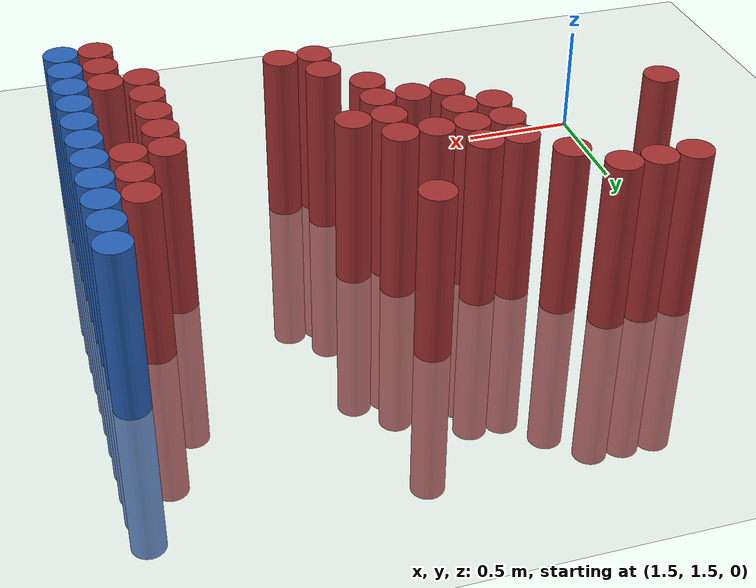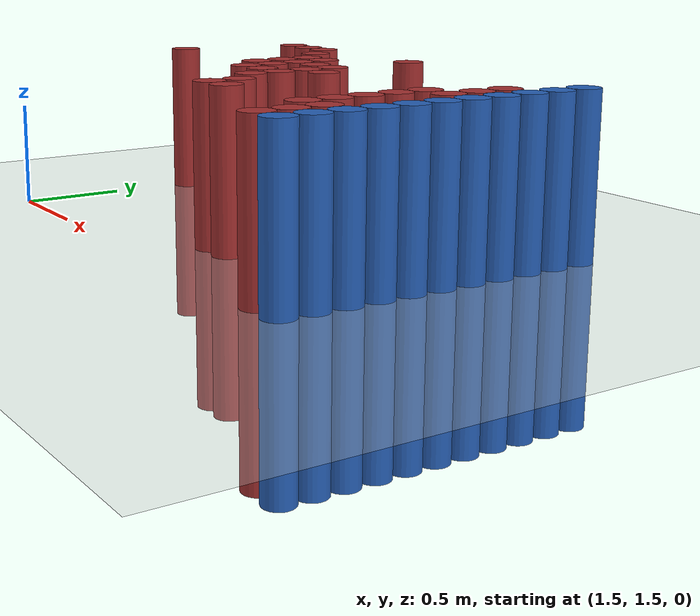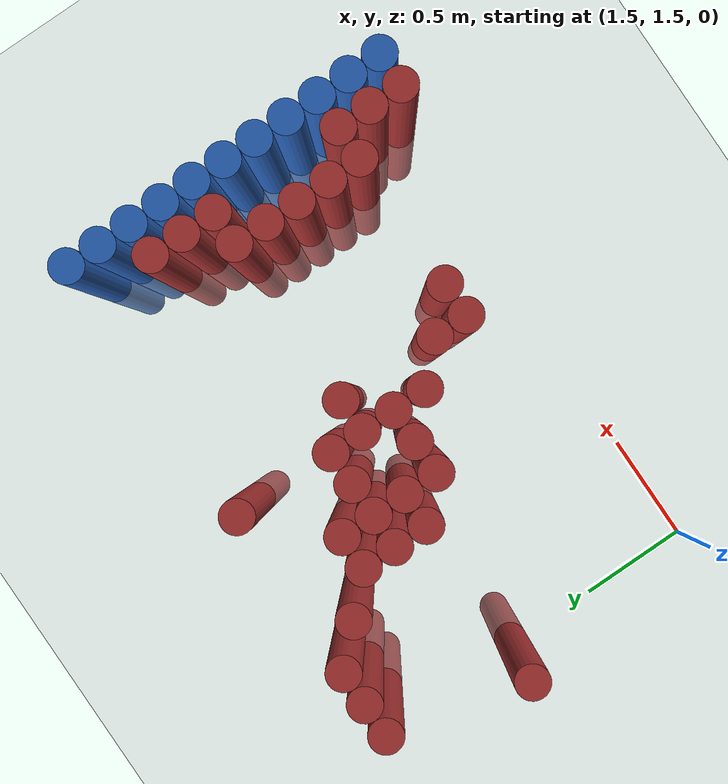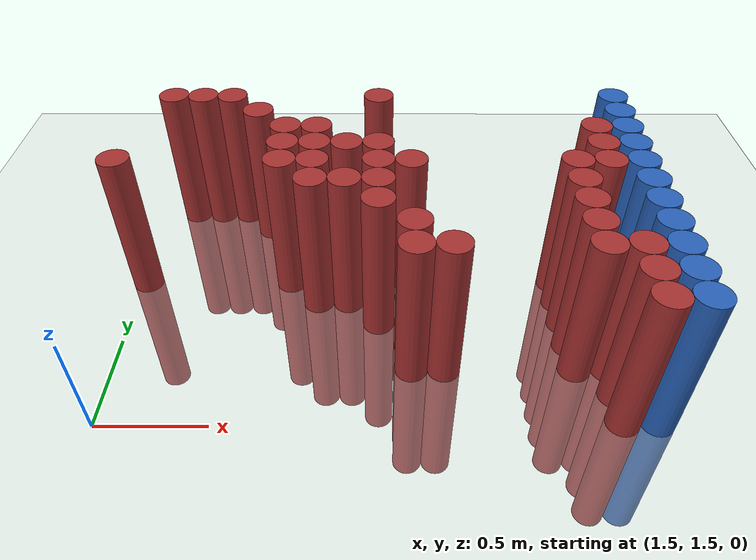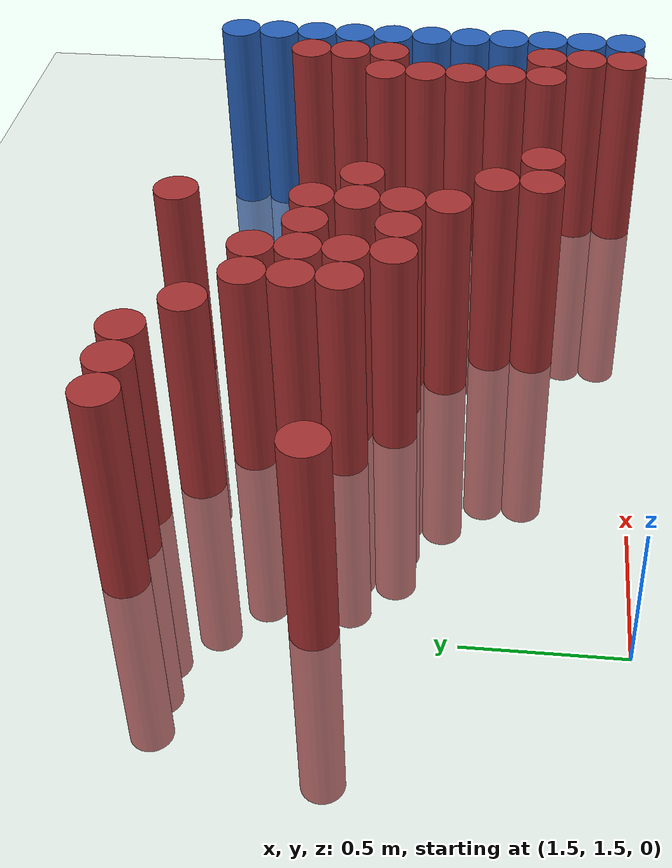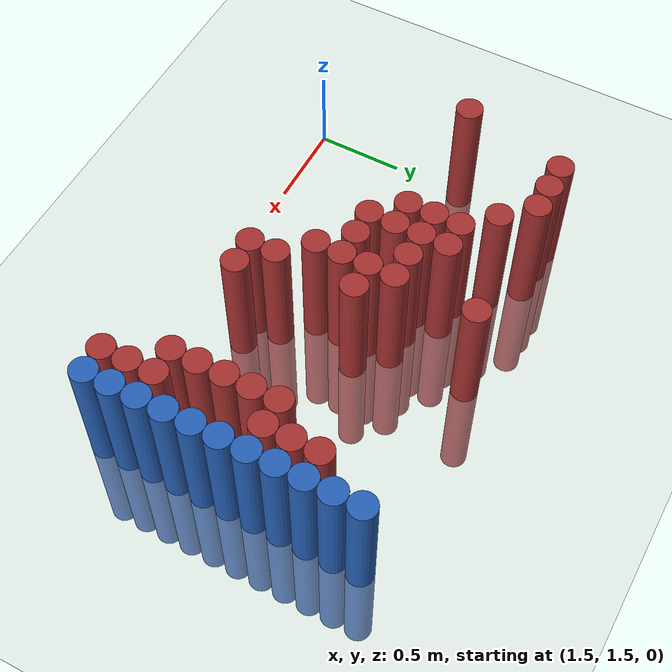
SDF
<sdf version="1.6">
 <world name="default">
  <model name="ground_plane">
   <static>1</static>
   <link name="link">
    <collision name="collision">
     <geometry><plane><normal>0 0 1</normal><size>100 100</size></plane></geometry>
     <surface><friction><ode><mu>100</mu><mu2>50</mu2></ode></friction></surface>
    </collision>
    <visual name="visual">
     <cast_shadows>0</cast_shadows>
     <geometry><plane><normal>0 0 1</normal><size>100 100</size></plane></geometry>
     <material>
      <script><uri>file://media/materials/scripts/gazebo.material</uri><name>Gazebo/Grey</name></script>
     </material>
    </visual>
   </link>
  </model>
  <model name="unit_cylinder_136">
   <static>1</static>
   <pose>3.925000 1.675000 0.000000 0.000000 0.000000 0.000000</pose>
   <link name="link">
    <inertial>
     <mass>1</mass>
     <inertia><ixx>0.145833</ixx><ixy>0</ixy><ixz>0</ixz><iyy>0.145833</iyy><iyz>0</iyz><izz>0.125</izz></inertia>
    </inertial>
    <collision name="collision">
     <geometry><cylinder><radius>0.075000</radius><length>1.5</length></cylinder></geometry>
    </collision>
    <visual name="visual">
     <geometry><cylinder><radius>0.075000</radius><length>1.5</length></cylinder></geometry>
     <material>
      <ambient>0.152000 0.379000 0.720000 1</ambient>
      <diffuse>0.152000 0.379000 0.720000 1</diffuse>
     </material>
     <material>
      <script><name>Gazebo/Grey</name><uri>file://media/materials/scripts/gazebo.material</uri></script>
     </material>
    </visual>
   </link>
  </model>
  <model name="unit_cylinder_138">
   <static>1</static>
   <pose>3.925000 1.825000 0.000000 0.000000 0.000000 0.000000</pose>
   <link name="link">
    <inertial>
     <mass>1</mass>
     <inertia><ixx>0.145833</ixx><ixy>0</ixy><ixz>0</ixz><iyy>0.145833</iyy><iyz>0</iyz><izz>0.125</izz></inertia>
    </inertial>
    <collision name="collision">
     <geometry><cylinder><radius>0.075000</radius><length>1.5</length></cylinder></geometry>
    </collision>
    <visual name="visual">
     <geometry><cylinder><radius>0.075000</radius><length>1.5</length></cylinder></geometry>
     <material>
      <ambient>0.152000 0.379000 0.720000 1</ambient>
      <diffuse>0.152000 0.379000 0.720000 1</diffuse>
     </material>
     <material>
      <script><name>Gazebo/Grey</name><uri>file://media/materials/scripts/gazebo.material</uri></script>
     </material>
    </visual>
   </link>
  </model>
  <model name="unit_cylinder_140">
   <static>1</static>
   <pose>3.925000 1.975000 0.000000 0.000000 0.000000 0.000000</pose>
   <link name="link">
    <inertial>
     <mass>1</mass>
     <inertia><ixx>0.145833</ixx><ixy>0</ixy><ixz>0</ixz><iyy>0.145833</iyy><iyz>0</iyz><izz>0.125</izz></inertia>
    </inertial>
    <collision name="collision">
     <geometry><cylinder><radius>0.075000</radius><length>1.5</length></cylinder></geometry>
    </collision>
    <visual name="visual">
     <geometry><cylinder><radius>0.075000</radius><length>1.5</length></cylinder></geometry>
     <material>
      <ambient>0.152000 0.379000 0.720000 1</ambient>
      <diffuse>0.152000 0.379000 0.720000 1</diffuse>
     </material>
     <material>
      <script><name>Gazebo/Grey</name><uri>file://media/materials/scripts/gazebo.material</uri></script>
     </material>
    </visual>
   </link>
  </model>
  <model name="unit_cylinder_142">
   <static>1</static>
   <pose>3.925000 2.125000 0.000000 0.000000 0.000000 0.000000</pose>
   <link name="link">
    <inertial>
     <mass>1</mass>
     <inertia><ixx>0.145833</ixx><ixy>0</ixy><ixz>0</ixz><iyy>0.145833</iyy><iyz>0</iyz><izz>0.125</izz></inertia>
    </inertial>
    <collision name="collision">
     <geometry><cylinder><radius>0.075000</radius><length>1.5</length></cylinder></geometry>
    </collision>
    <visual name="visual">
     <geometry><cylinder><radius>0.075000</radius><length>1.5</length></cylinder></geometry>
     <material>
      <ambient>0.152000 0.379000 0.720000 1</ambient>
      <diffuse>0.152000 0.379000 0.720000 1</diffuse>
     </material>
     <material>
      <script><name>Gazebo/Grey</name><uri>file://media/materials/scripts/gazebo.material</uri></script>
     </material>
    </visual>
   </link>
  </model>
  <model name="unit_cylinder_144">
   <static>1</static>
   <pose>3.925000 2.275000 0.000000 0.000000 0.000000 0.000000</pose>
   <link name="link">
    <inertial>
     <mass>1</mass>
     <inertia><ixx>0.145833</ixx><ixy>0</ixy><ixz>0</ixz><iyy>0.145833</iyy><iyz>0</iyz><izz>0.125</izz></inertia>
    </inertial>
    <collision name="collision">
     <geometry><cylinder><radius>0.075000</radius><length>1.5</length></cylinder></geometry>
    </collision>
    <visual name="visual">
     <geometry><cylinder><radius>0.075000</radius><length>1.5</length></cylinder></geometry>
     <material>
      <ambient>0.152000 0.379000 0.720000 1</ambient>
      <diffuse>0.152000 0.379000 0.720000 1</diffuse>
     </material>
     <material>
      <script><name>Gazebo/Grey</name><uri>file://media/materials/scripts/gazebo.material</uri></script>
     </material>
    </visual>
   </link>
  </model>
  <model name="unit_cylinder_146">
   <static>1</static>
   <pose>3.925000 2.425000 0.000000 0.000000 0.000000 0.000000</pose>
   <link name="link">
    <inertial>
     <mass>1</mass>
     <inertia><ixx>0.145833</ixx><ixy>0</ixy><ixz>0</ixz><iyy>0.145833</iyy><iyz>0</iyz><izz>0.125</izz></inertia>
    </inertial>
    <collision name="collision">
     <geometry><cylinder><radius>0.075000</radius><length>1.5</length></cylinder></geometry>
    </collision>
    <visual name="visual">
     <geometry><cylinder><radius>0.075000</radius><length>1.5</length></cylinder></geometry>
     <material>
      <ambient>0.152000 0.379000 0.720000 1</ambient>
      <diffuse>0.152000 0.379000 0.720000 1</diffuse>
     </material>
     <material>
      <script><name>Gazebo/Grey</name><uri>file://media/materials/scripts/gazebo.material</uri></script>
     </material>
    </visual>
   </link>
  </model>
  <model name="unit_cylinder_148">
   <static>1</static>
   <pose>3.925000 2.575000 0.000000 0.000000 0.000000 0.000000</pose>
   <link name="link">
    <inertial>
     <mass>1</mass>
     <inertia><ixx>0.145833</ixx><ixy>0</ixy><ixz>0</ixz><iyy>0.145833</iyy><iyz>0</iyz><izz>0.125</izz></inertia>
    </inertial>
    <collision name="collision">
     <geometry><cylinder><radius>0.075000</radius><length>1.5</length></cylinder></geometry>
    </collision>
    <visual name="visual">
     <geometry><cylinder><radius>0.075000</radius><length>1.5</length></cylinder></geometry>
     <material>
      <ambient>0.152000 0.379000 0.720000 1</ambient>
      <diffuse>0.152000 0.379000 0.720000 1</diffuse>
     </material>
     <material>
      <script><name>Gazebo/Grey</name><uri>file://media/materials/scripts/gazebo.material</uri></script>
     </material>
    </visual>
   </link>
  </model>
  <model name="unit_cylinder_150">
   <static>1</static>
   <pose>3.925000 2.725000 0.000000 0.000000 0.000000 0.000000</pose>
   <link name="link">
    <inertial>
     <mass>1</mass>
     <inertia><ixx>0.145833</ixx><ixy>0</ixy><ixz>0</ixz><iyy>0.145833</iyy><iyz>0</iyz><izz>0.125</izz></inertia>
    </inertial>
    <collision name="collision">
     <geometry><cylinder><radius>0.075000</radius><length>1.5</length></cylinder></geometry>
    </collision>
    <visual name="visual">
     <geometry><cylinder><radius>0.075000</radius><length>1.5</length></cylinder></geometry>
     <material>
      <ambient>0.152000 0.379000 0.720000 1</ambient>
      <diffuse>0.152000 0.379000 0.720000 1</diffuse>
     </material>
     <material>
      <script><name>Gazebo/Grey</name><uri>file://media/materials/scripts/gazebo.material</uri></script>
     </material>
    </visual>
   </link>
  </model>
  <model name="unit_cylinder_152">
   <static>1</static>
   <pose>3.925000 2.875000 0.000000 0.000000 0.000000 0.000000</pose>
   <link name="link">
    <inertial>
     <mass>1</mass>
     <inertia><ixx>0.145833</ixx><ixy>0</ixy><ixz>0</ixz><iyy>0.145833</iyy><iyz>0</iyz><izz>0.125</izz></inertia>
    </inertial>
    <collision name="collision">
     <geometry><cylinder><radius>0.075000</radius><length>1.5</length></cylinder></geometry>
    </collision>
    <visual name="visual">
     <geometry><cylinder><radius>0.075000</radius><length>1.5</length></cylinder></geometry>
     <material>
      <ambient>0.152000 0.379000 0.720000 1</ambient>
      <diffuse>0.152000 0.379000 0.720000 1</diffuse>
     </material>
     <material>
      <script><name>Gazebo/Grey</name><uri>file://media/materials/scripts/gazebo.material</uri></script>
     </material>
    </visual>
   </link>
  </model>
  <model name="unit_cylinder_154">
   <static>1</static>
   <pose>3.925000 3.025000 0.000000 0.000000 0.000000 0.000000</pose>
   <link name="link">
    <inertial>
     <mass>1</mass>
     <inertia><ixx>0.145833</ixx><ixy>0</ixy><ixz>0</ixz><iyy>0.145833</iyy><iyz>0</iyz><izz>0.125</izz></inertia>
    </inertial>
    <collision name="collision">
     <geometry><cylinder><radius>0.075000</radius><length>1.5</length></cylinder></geometry>
    </collision>
    <visual name="visual">
     <geometry><cylinder><radius>0.075000</radius><length>1.5</length></cylinder></geometry>
     <material>
      <ambient>0.152000 0.379000 0.720000 1</ambient>
      <diffuse>0.152000 0.379000 0.720000 1</diffuse>
     </material>
     <material>
      <script><name>Gazebo/Grey</name><uri>file://media/materials/scripts/gazebo.material</uri></script>
     </material>
    </visual>
   </link>
  </model>
  <model name="unit_cylinder_445">
   <static>1</static>
   <pose>1.525000 2.425000 0.000000 0.000000 0.000000 0.000000</pose>
   <link name="link">
    <inertial>
     <mass>1</mass>
     <inertia><ixx>0.145833</ixx><ixy>0</ixy><ixz>0</ixz><iyy>0.145833</iyy><iyz>0</iyz><izz>0.125</izz></inertia>
    </inertial>
    <collision name="collision">
     <geometry><cylinder><radius>0.075000</radius><length>1.5</length></cylinder></geometry>
    </collision>
    <visual name="visual">
     <geometry><cylinder><radius>0.075000</radius><length>1.5</length></cylinder></geometry>
     <material>
      <ambient>0.648000 0.192000 0.192000 1</ambient>
      <diffuse>0.648000 0.192000 0.192000 1</diffuse>
     </material>
     <material>
      <script><name>Gazebo/Grey</name><uri>file://media/materials/scripts/gazebo.material</uri></script>
     </material>
    </visual>
   </link>
  </model>
  <model name="unit_cylinder_454">
   <static>1</static>
   <pose>1.675000 3.025000 0.000000 0.000000 0.000000 0.000000</pose>
   <link name="link">
    <inertial>
     <mass>1</mass>
     <inertia><ixx>0.145833</ixx><ixy>0</ixy><ixz>0</ixz><iyy>0.145833</iyy><iyz>0</iyz><izz>0.125</izz></inertia>
    </inertial>
    <collision name="collision">
     <geometry><cylinder><radius>0.075000</radius><length>1.5</length></cylinder></geometry>
    </collision>
    <visual name="visual">
     <geometry><cylinder><radius>0.075000</radius><length>1.5</length></cylinder></geometry>
     <material>
      <ambient>0.648000 0.192000 0.192000 1</ambient>
      <diffuse>0.648000 0.192000 0.192000 1</diffuse>
     </material>
     <material>
      <script><name>Gazebo/Grey</name><uri>file://media/materials/scripts/gazebo.material</uri></script>
     </material>
    </visual>
   </link>
  </model>
  <model name="unit_cylinder_462">
   <static>1</static>
   <pose>1.825000 3.025000 0.000000 0.000000 0.000000 0.000000</pose>
   <link name="link">
    <inertial>
     <mass>1</mass>
     <inertia><ixx>0.145833</ixx><ixy>0</ixy><ixz>0</ixz><iyy>0.145833</iyy><iyz>0</iyz><izz>0.125</izz></inertia>
    </inertial>
    <collision name="collision">
     <geometry><cylinder><radius>0.075000</radius><length>1.5</length></cylinder></geometry>
    </collision>
    <visual name="visual">
     <geometry><cylinder><radius>0.075000</radius><length>1.5</length></cylinder></geometry>
     <material>
      <ambient>0.648000 0.192000 0.192000 1</ambient>
      <diffuse>0.648000 0.192000 0.192000 1</diffuse>
     </material>
     <material>
      <script><name>Gazebo/Grey</name><uri>file://media/materials/scripts/gazebo.material</uri></script>
     </material>
    </visual>
   </link>
  </model>
  <model name="unit_cylinder_471">
   <static>1</static>
   <pose>1.975000 3.025000 0.000000 0.000000 0.000000 0.000000</pose>
   <link name="link">
    <inertial>
     <mass>1</mass>
     <inertia><ixx>0.145833</ixx><ixy>0</ixy><ixz>0</ixz><iyy>0.145833</iyy><iyz>0</iyz><izz>0.125</izz></inertia>
    </inertial>
    <collision name="collision">
     <geometry><cylinder><radius>0.075000</radius><length>1.5</length></cylinder></geometry>
    </collision>
    <visual name="visual">
     <geometry><cylinder><radius>0.075000</radius><length>1.5</length></cylinder></geometry>
     <material>
      <ambient>0.648000 0.192000 0.192000 1</ambient>
      <diffuse>0.648000 0.192000 0.192000 1</diffuse>
     </material>
     <material>
      <script><name>Gazebo/Grey</name><uri>file://media/materials/scripts/gazebo.material</uri></script>
     </material>
    </visual>
   </link>
  </model>
  <model name="unit_cylinder_485">
   <static>1</static>
   <pose>2.125000 2.875000 0.000000 0.000000 0.000000 0.000000</pose>
   <link name="link">
    <inertial>
     <mass>1</mass>
     <inertia><ixx>0.145833</ixx><ixy>0</ixy><ixz>0</ixz><iyy>0.145833</iyy><iyz>0</iyz><izz>0.125</izz></inertia>
    </inertial>
    <collision name="collision">
     <geometry><cylinder><radius>0.075000</radius><length>1.5</length></cylinder></geometry>
    </collision>
    <visual name="visual">
     <geometry><cylinder><radius>0.075000</radius><length>1.5</length></cylinder></geometry>
     <material>
      <ambient>0.648000 0.192000 0.192000 1</ambient>
      <diffuse>0.648000 0.192000 0.192000 1</diffuse>
     </material>
     <material>
      <script><name>Gazebo/Grey</name><uri>file://media/materials/scripts/gazebo.material</uri></script>
     </material>
    </visual>
   </link>
  </model>
  <model name="unit_cylinder_494">
   <static>1</static>
   <pose>2.275000 2.425000 0.000000 0.000000 0.000000 0.000000</pose>
   <link name="link">
    <inertial>
     <mass>1</mass>
     <inertia><ixx>0.145833</ixx><ixy>0</ixy><ixz>0</ixz><iyy>0.145833</iyy><iyz>0</iyz><izz>0.125</izz></inertia>
    </inertial>
    <collision name="collision">
     <geometry><cylinder><radius>0.075000</radius><length>1.5</length></cylinder></geometry>
    </collision>
    <visual name="visual">
     <geometry><cylinder><radius>0.075000</radius><length>1.5</length></cylinder></geometry>
     <material>
      <ambient>0.648000 0.192000 0.192000 1</ambient>
      <diffuse>0.648000 0.192000 0.192000 1</diffuse>
     </material>
     <material>
      <script><name>Gazebo/Grey</name><uri>file://media/materials/scripts/gazebo.material</uri></script>
     </material>
    </visual>
   </link>
  </model>
  <model name="unit_cylinder_495">
   <static>1</static>
   <pose>2.275000 2.575000 0.000000 0.000000 0.000000 0.000000</pose>
   <link name="link">
    <inertial>
     <mass>1</mass>
     <inertia><ixx>0.145833</ixx><ixy>0</ixy><ixz>0</ixz><iyy>0.145833</iyy><iyz>0</iyz><izz>0.125</izz></inertia>
    </inertial>
    <collision name="collision">
     <geometry><cylinder><radius>0.075000</radius><length>1.5</length></cylinder></geometry>
    </collision>
    <visual name="visual">
     <geometry><cylinder><radius>0.075000</radius><length>1.5</length></cylinder></geometry>
     <material>
      <ambient>0.648000 0.192000 0.192000 1</ambient>
      <diffuse>0.648000 0.192000 0.192000 1</diffuse>
     </material>
     <material>
      <script><name>Gazebo/Grey</name><uri>file://media/materials/scripts/gazebo.material</uri></script>
     </material>
    </visual>
   </link>
  </model>
  <model name="unit_cylinder_496">
   <static>1</static>
   <pose>2.275000 2.725000 0.000000 0.000000 0.000000 0.000000</pose>
   <link name="link">
    <inertial>
     <mass>1</mass>
     <inertia><ixx>0.145833</ixx><ixy>0</ixy><ixz>0</ixz><iyy>0.145833</iyy><iyz>0</iyz><izz>0.125</izz></inertia>
    </inertial>
    <collision name="collision">
     <geometry><cylinder><radius>0.075000</radius><length>1.5</length></cylinder></geometry>
    </collision>
    <visual name="visual">
     <geometry><cylinder><radius>0.075000</radius><length>1.5</length></cylinder></geometry>
     <material>
      <ambient>0.648000 0.192000 0.192000 1</ambient>
      <diffuse>0.648000 0.192000 0.192000 1</diffuse>
     </material>
     <material>
      <script><name>Gazebo/Grey</name><uri>file://media/materials/scripts/gazebo.material</uri></script>
     </material>
    </visual>
   </link>
  </model>
  <model name="unit_cylinder_508">
   <static>1</static>
   <pose>2.425000 2.275000 0.000000 0.000000 0.000000 0.000000</pose>
   <link name="link">
    <inertial>
     <mass>1</mass>
     <inertia><ixx>0.145833</ixx><ixy>0</ixy><ixz>0</ixz><iyy>0.145833</iyy><iyz>0</iyz><izz>0.125</izz></inertia>
    </inertial>
    <collision name="collision">
     <geometry><cylinder><radius>0.075000</radius><length>1.5</length></cylinder></geometry>
    </collision>
    <visual name="visual">
     <geometry><cylinder><radius>0.075000</radius><length>1.5</length></cylinder></geometry>
     <material>
      <ambient>0.648000 0.192000 0.192000 1</ambient>
      <diffuse>0.648000 0.192000 0.192000 1</diffuse>
     </material>
     <material>
      <script><name>Gazebo/Grey</name><uri>file://media/materials/scripts/gazebo.material</uri></script>
     </material>
    </visual>
   </link>
  </model>
  <model name="unit_cylinder_509">
   <static>1</static>
   <pose>2.425000 2.425000 0.000000 0.000000 0.000000 0.000000</pose>
   <link name="link">
    <inertial>
     <mass>1</mass>
     <inertia><ixx>0.145833</ixx><ixy>0</ixy><ixz>0</ixz><iyy>0.145833</iyy><iyz>0</iyz><izz>0.125</izz></inertia>
    </inertial>
    <collision name="collision">
     <geometry><cylinder><radius>0.075000</radius><length>1.5</length></cylinder></geometry>
    </collision>
    <visual name="visual">
     <geometry><cylinder><radius>0.075000</radius><length>1.5</length></cylinder></geometry>
     <material>
      <ambient>0.648000 0.192000 0.192000 1</ambient>
      <diffuse>0.648000 0.192000 0.192000 1</diffuse>
     </material>
     <material>
      <script><name>Gazebo/Grey</name><uri>file://media/materials/scripts/gazebo.material</uri></script>
     </material>
    </visual>
   </link>
  </model>
  <model name="unit_cylinder_510">
   <static>1</static>
   <pose>2.425000 2.575000 0.000000 0.000000 0.000000 0.000000</pose>
   <link name="link">
    <inertial>
     <mass>1</mass>
     <inertia><ixx>0.145833</ixx><ixy>0</ixy><ixz>0</ixz><iyy>0.145833</iyy><iyz>0</iyz><izz>0.125</izz></inertia>
    </inertial>
    <collision name="collision">
     <geometry><cylinder><radius>0.075000</radius><length>1.5</length></cylinder></geometry>
    </collision>
    <visual name="visual">
     <geometry><cylinder><radius>0.075000</radius><length>1.5</length></cylinder></geometry>
     <material>
      <ambient>0.648000 0.192000 0.192000 1</ambient>
      <diffuse>0.648000 0.192000 0.192000 1</diffuse>
     </material>
     <material>
      <script><name>Gazebo/Grey</name><uri>file://media/materials/scripts/gazebo.material</uri></script>
     </material>
    </visual>
   </link>
  </model>
  <model name="unit_cylinder_511">
   <static>1</static>
   <pose>2.425000 2.725000 0.000000 0.000000 0.000000 0.000000</pose>
   <link name="link">
    <inertial>
     <mass>1</mass>
     <inertia><ixx>0.145833</ixx><ixy>0</ixy><ixz>0</ixz><iyy>0.145833</iyy><iyz>0</iyz><izz>0.125</izz></inertia>
    </inertial>
    <collision name="collision">
     <geometry><cylinder><radius>0.075000</radius><length>1.5</length></cylinder></geometry>
    </collision>
    <visual name="visual">
     <geometry><cylinder><radius>0.075000</radius><length>1.5</length></cylinder></geometry>
     <material>
      <ambient>0.648000 0.192000 0.192000 1</ambient>
      <diffuse>0.648000 0.192000 0.192000 1</diffuse>
     </material>
     <material>
      <script><name>Gazebo/Grey</name><uri>file://media/materials/scripts/gazebo.material</uri></script>
     </material>
    </visual>
   </link>
  </model>
  <model name="unit_cylinder_516">
   <static>1</static>
   <pose>2.575000 2.275000 0.000000 0.000000 0.000000 0.000000</pose>
   <link name="link">
    <inertial>
     <mass>1</mass>
     <inertia><ixx>0.145833</ixx><ixy>0</ixy><ixz>0</ixz><iyy>0.145833</iyy><iyz>0</iyz><izz>0.125</izz></inertia>
    </inertial>
    <collision name="collision">
     <geometry><cylinder><radius>0.075000</radius><length>1.5</length></cylinder></geometry>
    </collision>
    <visual name="visual">
     <geometry><cylinder><radius>0.075000</radius><length>1.5</length></cylinder></geometry>
     <material>
      <ambient>0.648000 0.192000 0.192000 1</ambient>
      <diffuse>0.648000 0.192000 0.192000 1</diffuse>
     </material>
     <material>
      <script><name>Gazebo/Grey</name><uri>file://media/materials/scripts/gazebo.material</uri></script>
     </material>
    </visual>
   </link>
  </model>
  <model name="unit_cylinder_517">
   <static>1</static>
   <pose>2.575000 2.575000 0.000000 0.000000 0.000000 0.000000</pose>
   <link name="link">
    <inertial>
     <mass>1</mass>
     <inertia><ixx>0.145833</ixx><ixy>0</ixy><ixz>0</ixz><iyy>0.145833</iyy><iyz>0</iyz><izz>0.125</izz></inertia>
    </inertial>
    <collision name="collision">
     <geometry><cylinder><radius>0.075000</radius><length>1.5</length></cylinder></geometry>
    </collision>
    <visual name="visual">
     <geometry><cylinder><radius>0.075000</radius><length>1.5</length></cylinder></geometry>
     <material>
      <ambient>0.648000 0.192000 0.192000 1</ambient>
      <diffuse>0.648000 0.192000 0.192000 1</diffuse>
     </material>
     <material>
      <script><name>Gazebo/Grey</name><uri>file://media/materials/scripts/gazebo.material</uri></script>
     </material>
    </visual>
   </link>
  </model>
  <model name="unit_cylinder_522">
   <static>1</static>
   <pose>2.725000 2.125000 0.000000 0.000000 0.000000 0.000000</pose>
   <link name="link">
    <inertial>
     <mass>1</mass>
     <inertia><ixx>0.145833</ixx><ixy>0</ixy><ixz>0</ixz><iyy>0.145833</iyy><iyz>0</iyz><izz>0.125</izz></inertia>
    </inertial>
    <collision name="collision">
     <geometry><cylinder><radius>0.075000</radius><length>1.5</length></cylinder></geometry>
    </collision>
    <visual name="visual">
     <geometry><cylinder><radius>0.075000</radius><length>1.5</length></cylinder></geometry>
     <material>
      <ambient>0.648000 0.192000 0.192000 1</ambient>
      <diffuse>0.648000 0.192000 0.192000 1</diffuse>
     </material>
     <material>
      <script><name>Gazebo/Grey</name><uri>file://media/materials/scripts/gazebo.material</uri></script>
     </material>
    </visual>
   </link>
  </model>
  <model name="unit_cylinder_523">
   <static>1</static>
   <pose>2.725000 2.275000 0.000000 0.000000 0.000000 0.000000</pose>
   <link name="link">
    <inertial>
     <mass>1</mass>
     <inertia><ixx>0.145833</ixx><ixy>0</ixy><ixz>0</ixz><iyy>0.145833</iyy><iyz>0</iyz><izz>0.125</izz></inertia>
    </inertial>
    <collision name="collision">
     <geometry><cylinder><radius>0.075000</radius><length>1.5</length></cylinder></geometry>
    </collision>
    <visual name="visual">
     <geometry><cylinder><radius>0.075000</radius><length>1.5</length></cylinder></geometry>
     <material>
      <ambient>0.648000 0.192000 0.192000 1</ambient>
      <diffuse>0.648000 0.192000 0.192000 1</diffuse>
     </material>
     <material>
      <script><name>Gazebo/Grey</name><uri>file://media/materials/scripts/gazebo.material</uri></script>
     </material>
    </visual>
   </link>
  </model>
  <model name="unit_cylinder_524">
   <static>1</static>
   <pose>2.725000 2.425000 0.000000 0.000000 0.000000 0.000000</pose>
   <link name="link">
    <inertial>
     <mass>1</mass>
     <inertia><ixx>0.145833</ixx><ixy>0</ixy><ixz>0</ixz><iyy>0.145833</iyy><iyz>0</iyz><izz>0.125</izz></inertia>
    </inertial>
    <collision name="collision">
     <geometry><cylinder><radius>0.075000</radius><length>1.5</length></cylinder></geometry>
    </collision>
    <visual name="visual">
     <geometry><cylinder><radius>0.075000</radius><length>1.5</length></cylinder></geometry>
     <material>
      <ambient>0.648000 0.192000 0.192000 1</ambient>
      <diffuse>0.648000 0.192000 0.192000 1</diffuse>
     </material>
     <material>
      <script><name>Gazebo/Grey</name><uri>file://media/materials/scripts/gazebo.material</uri></script>
     </material>
    </visual>
   </link>
  </model>
  <model name="unit_cylinder_525">
   <static>1</static>
   <pose>2.725000 2.575000 0.000000 0.000000 0.000000 0.000000</pose>
   <link name="link">
    <inertial>
     <mass>1</mass>
     <inertia><ixx>0.145833</ixx><ixy>0</ixy><ixz>0</ixz><iyy>0.145833</iyy><iyz>0</iyz><izz>0.125</izz></inertia>
    </inertial>
    <collision name="collision">
     <geometry><cylinder><radius>0.075000</radius><length>1.5</length></cylinder></geometry>
    </collision>
    <visual name="visual">
     <geometry><cylinder><radius>0.075000</radius><length>1.5</length></cylinder></geometry>
     <material>
      <ambient>0.648000 0.192000 0.192000 1</ambient>
      <diffuse>0.648000 0.192000 0.192000 1</diffuse>
     </material>
     <material>
      <script><name>Gazebo/Grey</name><uri>file://media/materials/scripts/gazebo.material</uri></script>
     </material>
    </visual>
   </link>
  </model>
  <model name="unit_cylinder_526">
   <static>1</static>
   <pose>2.725000 3.025000 0.000000 0.000000 0.000000 0.000000</pose>
   <link name="link">
    <inertial>
     <mass>1</mass>
     <inertia><ixx>0.145833</ixx><ixy>0</ixy><ixz>0</ixz><iyy>0.145833</iyy><iyz>0</iyz><izz>0.125</izz></inertia>
    </inertial>
    <collision name="collision">
     <geometry><cylinder><radius>0.075000</radius><length>1.5</length></cylinder></geometry>
    </collision>
    <visual name="visual">
     <geometry><cylinder><radius>0.075000</radius><length>1.5</length></cylinder></geometry>
     <material>
      <ambient>0.648000 0.192000 0.192000 1</ambient>
      <diffuse>0.648000 0.192000 0.192000 1</diffuse>
     </material>
     <material>
      <script><name>Gazebo/Grey</name><uri>file://media/materials/scripts/gazebo.material</uri></script>
     </material>
    </visual>
   </link>
  </model>
  <model name="unit_cylinder_535">
   <static>1</static>
   <pose>2.875000 1.825000 0.000000 0.000000 0.000000 0.000000</pose>
   <link name="link">
    <inertial>
     <mass>1</mass>
     <inertia><ixx>0.145833</ixx><ixy>0</ixy><ixz>0</ixz><iyy>0.145833</iyy><iyz>0</iyz><izz>0.125</izz></inertia>
    </inertial>
    <collision name="collision">
     <geometry><cylinder><radius>0.075000</radius><length>1.5</length></cylinder></geometry>
    </collision>
    <visual name="visual">
     <geometry><cylinder><radius>0.075000</radius><length>1.5</length></cylinder></geometry>
     <material>
      <ambient>0.648000 0.192000 0.192000 1</ambient>
      <diffuse>0.648000 0.192000 0.192000 1</diffuse>
     </material>
     <material>
      <script><name>Gazebo/Grey</name><uri>file://media/materials/scripts/gazebo.material</uri></script>
     </material>
    </visual>
   </link>
  </model>
  <model name="unit_cylinder_536">
   <static>1</static>
   <pose>2.875000 1.975000 0.000000 0.000000 0.000000 0.000000</pose>
   <link name="link">
    <inertial>
     <mass>1</mass>
     <inertia><ixx>0.145833</ixx><ixy>0</ixy><ixz>0</ixz><iyy>0.145833</iyy><iyz>0</iyz><izz>0.125</izz></inertia>
    </inertial>
    <collision name="collision">
     <geometry><cylinder><radius>0.075000</radius><length>1.5</length></cylinder></geometry>
    </collision>
    <visual name="visual">
     <geometry><cylinder><radius>0.075000</radius><length>1.5</length></cylinder></geometry>
     <material>
      <ambient>0.648000 0.192000 0.192000 1</ambient>
      <diffuse>0.648000 0.192000 0.192000 1</diffuse>
     </material>
     <material>
      <script><name>Gazebo/Grey</name><uri>file://media/materials/scripts/gazebo.material</uri></script>
     </material>
    </visual>
   </link>
  </model>
  <model name="unit_cylinder_537">
   <static>1</static>
   <pose>2.875000 2.425000 0.000000 0.000000 0.000000 0.000000</pose>
   <link name="link">
    <inertial>
     <mass>1</mass>
     <inertia><ixx>0.145833</ixx><ixy>0</ixy><ixz>0</ixz><iyy>0.145833</iyy><iyz>0</iyz><izz>0.125</izz></inertia>
    </inertial>
    <collision name="collision">
     <geometry><cylinder><radius>0.075000</radius><length>1.5</length></cylinder></geometry>
    </collision>
    <visual name="visual">
     <geometry><cylinder><radius>0.075000</radius><length>1.5</length></cylinder></geometry>
     <material>
      <ambient>0.648000 0.192000 0.192000 1</ambient>
      <diffuse>0.648000 0.192000 0.192000 1</diffuse>
     </material>
     <material>
      <script><name>Gazebo/Grey</name><uri>file://media/materials/scripts/gazebo.material</uri></script>
     </material>
    </visual>
   </link>
  </model>
  <model name="unit_cylinder_544">
   <static>1</static>
   <pose>3.025000 1.825000 0.000000 0.000000 0.000000 0.000000</pose>
   <link name="link">
    <inertial>
     <mass>1</mass>
     <inertia><ixx>0.145833</ixx><ixy>0</ixy><ixz>0</ixz><iyy>0.145833</iyy><iyz>0</iyz><izz>0.125</izz></inertia>
    </inertial>
    <collision name="collision">
     <geometry><cylinder><radius>0.075000</radius><length>1.5</length></cylinder></geometry>
    </collision>
    <visual name="visual">
     <geometry><cylinder><radius>0.075000</radius><length>1.5</length></cylinder></geometry>
     <material>
      <ambient>0.648000 0.192000 0.192000 1</ambient>
      <diffuse>0.648000 0.192000 0.192000 1</diffuse>
     </material>
     <material>
      <script><name>Gazebo/Grey</name><uri>file://media/materials/scripts/gazebo.material</uri></script>
     </material>
    </visual>
   </link>
  </model>
  <model name="unit_cylinder_568">
   <static>1</static>
   <pose>3.625000 1.825000 0.000000 0.000000 0.000000 0.000000</pose>
   <link name="link">
    <inertial>
     <mass>1</mass>
     <inertia><ixx>0.145833</ixx><ixy>0</ixy><ixz>0</ixz><iyy>0.145833</iyy><iyz>0</iyz><izz>0.125</izz></inertia>
    </inertial>
    <collision name="collision">
     <geometry><cylinder><radius>0.075000</radius><length>1.5</length></cylinder></geometry>
    </collision>
    <visual name="visual">
     <geometry><cylinder><radius>0.075000</radius><length>1.5</length></cylinder></geometry>
     <material>
      <ambient>0.648000 0.192000 0.192000 1</ambient>
      <diffuse>0.648000 0.192000 0.192000 1</diffuse>
     </material>
     <material>
      <script><name>Gazebo/Grey</name><uri>file://media/materials/scripts/gazebo.material</uri></script>
     </material>
    </visual>
   </link>
  </model>
  <model name="unit_cylinder_569">
   <static>1</static>
   <pose>3.625000 1.975000 0.000000 0.000000 0.000000 0.000000</pose>
   <link name="link">
    <inertial>
     <mass>1</mass>
     <inertia><ixx>0.145833</ixx><ixy>0</ixy><ixz>0</ixz><iyy>0.145833</iyy><iyz>0</iyz><izz>0.125</izz></inertia>
    </inertial>
    <collision name="collision">
     <geometry><cylinder><radius>0.075000</radius><length>1.5</length></cylinder></geometry>
    </collision>
    <visual name="visual">
     <geometry><cylinder><radius>0.075000</radius><length>1.5</length></cylinder></geometry>
     <material>
      <ambient>0.648000 0.192000 0.192000 1</ambient>
      <diffuse>0.648000 0.192000 0.192000 1</diffuse>
     </material>
     <material>
      <script><name>Gazebo/Grey</name><uri>file://media/materials/scripts/gazebo.material</uri></script>
     </material>
    </visual>
   </link>
  </model>
  <model name="unit_cylinder_570">
   <static>1</static>
   <pose>3.625000 2.125000 0.000000 0.000000 0.000000 0.000000</pose>
   <link name="link">
    <inertial>
     <mass>1</mass>
     <inertia><ixx>0.145833</ixx><ixy>0</ixy><ixz>0</ixz><iyy>0.145833</iyy><iyz>0</iyz><izz>0.125</izz></inertia>
    </inertial>
    <collision name="collision">
     <geometry><cylinder><radius>0.075000</radius><length>1.5</length></cylinder></geometry>
    </collision>
    <visual name="visual">
     <geometry><cylinder><radius>0.075000</radius><length>1.5</length></cylinder></geometry>
     <material>
      <ambient>0.648000 0.192000 0.192000 1</ambient>
      <diffuse>0.648000 0.192000 0.192000 1</diffuse>
     </material>
     <material>
      <script><name>Gazebo/Grey</name><uri>file://media/materials/scripts/gazebo.material</uri></script>
     </material>
    </visual>
   </link>
  </model>
  <model name="unit_cylinder_571">
   <static>1</static>
   <pose>3.625000 2.275000 0.000000 0.000000 0.000000 0.000000</pose>
   <link name="link">
    <inertial>
     <mass>1</mass>
     <inertia><ixx>0.145833</ixx><ixy>0</ixy><ixz>0</ixz><iyy>0.145833</iyy><iyz>0</iyz><izz>0.125</izz></inertia>
    </inertial>
    <collision name="collision">
     <geometry><cylinder><radius>0.075000</radius><length>1.5</length></cylinder></geometry>
    </collision>
    <visual name="visual">
     <geometry><cylinder><radius>0.075000</radius><length>1.5</length></cylinder></geometry>
     <material>
      <ambient>0.648000 0.192000 0.192000 1</ambient>
      <diffuse>0.648000 0.192000 0.192000 1</diffuse>
     </material>
     <material>
      <script><name>Gazebo/Grey</name><uri>file://media/materials/scripts/gazebo.material</uri></script>
     </material>
    </visual>
   </link>
  </model>
  <model name="unit_cylinder_572">
   <static>1</static>
   <pose>3.625000 2.425000 0.000000 0.000000 0.000000 0.000000</pose>
   <link name="link">
    <inertial>
     <mass>1</mass>
     <inertia><ixx>0.145833</ixx><ixy>0</ixy><ixz>0</ixz><iyy>0.145833</iyy><iyz>0</iyz><izz>0.125</izz></inertia>
    </inertial>
    <collision name="collision">
     <geometry><cylinder><radius>0.075000</radius><length>1.5</length></cylinder></geometry>
    </collision>
    <visual name="visual">
     <geometry><cylinder><radius>0.075000</radius><length>1.5</length></cylinder></geometry>
     <material>
      <ambient>0.648000 0.192000 0.192000 1</ambient>
      <diffuse>0.648000 0.192000 0.192000 1</diffuse>
     </material>
     <material>
      <script><name>Gazebo/Grey</name><uri>file://media/materials/scripts/gazebo.material</uri></script>
     </material>
    </visual>
   </link>
  </model>
  <model name="unit_cylinder_586">
   <static>1</static>
   <pose>3.775000 1.525000 0.000000 0.000000 0.000000 0.000000</pose>
   <link name="link">
    <inertial>
     <mass>1</mass>
     <inertia><ixx>0.145833</ixx><ixy>0</ixy><ixz>0</ixz><iyy>0.145833</iyy><iyz>0</iyz><izz>0.125</izz></inertia>
    </inertial>
    <collision name="collision">
     <geometry><cylinder><radius>0.075000</radius><length>1.5</length></cylinder></geometry>
    </collision>
    <visual name="visual">
     <geometry><cylinder><radius>0.075000</radius><length>1.5</length></cylinder></geometry>
     <material>
      <ambient>0.648000 0.192000 0.192000 1</ambient>
      <diffuse>0.648000 0.192000 0.192000 1</diffuse>
     </material>
     <material>
      <script><name>Gazebo/Grey</name><uri>file://media/materials/scripts/gazebo.material</uri></script>
     </material>
    </visual>
   </link>
  </model>
  <model name="unit_cylinder_587">
   <static>1</static>
   <pose>3.775000 1.675000 0.000000 0.000000 0.000000 0.000000</pose>
   <link name="link">
    <inertial>
     <mass>1</mass>
     <inertia><ixx>0.145833</ixx><ixy>0</ixy><ixz>0</ixz><iyy>0.145833</iyy><iyz>0</iyz><izz>0.125</izz></inertia>
    </inertial>
    <collision name="collision">
     <geometry><cylinder><radius>0.075000</radius><length>1.5</length></cylinder></geometry>
    </collision>
    <visual name="visual">
     <geometry><cylinder><radius>0.075000</radius><length>1.5</length></cylinder></geometry>
     <material>
      <ambient>0.648000 0.192000 0.192000 1</ambient>
      <diffuse>0.648000 0.192000 0.192000 1</diffuse>
     </material>
     <material>
      <script><name>Gazebo/Grey</name><uri>file://media/materials/scripts/gazebo.material</uri></script>
     </material>
    </visual>
   </link>
  </model>
  <model name="unit_cylinder_588">
   <static>1</static>
   <pose>3.775000 1.825000 0.000000 0.000000 0.000000 0.000000</pose>
   <link name="link">
    <inertial>
     <mass>1</mass>
     <inertia><ixx>0.145833</ixx><ixy>0</ixy><ixz>0</ixz><iyy>0.145833</iyy><iyz>0</iyz><izz>0.125</izz></inertia>
    </inertial>
    <collision name="collision">
     <geometry><cylinder><radius>0.075000</radius><length>1.5</length></cylinder></geometry>
    </collision>
    <visual name="visual">
     <geometry><cylinder><radius>0.075000</radius><length>1.5</length></cylinder></geometry>
     <material>
      <ambient>0.648000 0.192000 0.192000 1</ambient>
      <diffuse>0.648000 0.192000 0.192000 1</diffuse>
     </material>
     <material>
      <script><name>Gazebo/Grey</name><uri>file://media/materials/scripts/gazebo.material</uri></script>
     </material>
    </visual>
   </link>
  </model>
  <model name="unit_cylinder_589">
   <static>1</static>
   <pose>3.775000 2.425000 0.000000 0.000000 0.000000 0.000000</pose>
   <link name="link">
    <inertial>
     <mass>1</mass>
     <inertia><ixx>0.145833</ixx><ixy>0</ixy><ixz>0</ixz><iyy>0.145833</iyy><iyz>0</iyz><izz>0.125</izz></inertia>
    </inertial>
    <collision name="collision">
     <geometry><cylinder><radius>0.075000</radius><length>1.5</length></cylinder></geometry>
    </collision>
    <visual name="visual">
     <geometry><cylinder><radius>0.075000</radius><length>1.5</length></cylinder></geometry>
     <material>
      <ambient>0.648000 0.192000 0.192000 1</ambient>
      <diffuse>0.648000 0.192000 0.192000 1</diffuse>
     </material>
     <material>
      <script><name>Gazebo/Grey</name><uri>file://media/materials/scripts/gazebo.material</uri></script>
     </material>
    </visual>
   </link>
  </model>
  <model name="unit_cylinder_590">
   <static>1</static>
   <pose>3.775000 2.575000 0.000000 0.000000 0.000000 0.000000</pose>
   <link name="link">
    <inertial>
     <mass>1</mass>
     <inertia><ixx>0.145833</ixx><ixy>0</ixy><ixz>0</ixz><iyy>0.145833</iyy><iyz>0</iyz><izz>0.125</izz></inertia>
    </inertial>
    <collision name="collision">
     <geometry><cylinder><radius>0.075000</radius><length>1.5</length></cylinder></geometry>
    </collision>
    <visual name="visual">
     <geometry><cylinder><radius>0.075000</radius><length>1.5</length></cylinder></geometry>
     <material>
      <ambient>0.648000 0.192000 0.192000 1</ambient>
      <diffuse>0.648000 0.192000 0.192000 1</diffuse>
     </material>
     <material>
      <script><name>Gazebo/Grey</name><uri>file://media/materials/scripts/gazebo.material</uri></script>
     </material>
    </visual>
   </link>
  </model>
  <model name="unit_cylinder_591">
   <static>1</static>
   <pose>3.775000 2.725000 0.000000 0.000000 0.000000 0.000000</pose>
   <link name="link">
    <inertial>
     <mass>1</mass>
     <inertia><ixx>0.145833</ixx><ixy>0</ixy><ixz>0</ixz><iyy>0.145833</iyy><iyz>0</iyz><izz>0.125</izz></inertia>
    </inertial>
    <collision name="collision">
     <geometry><cylinder><radius>0.075000</radius><length>1.5</length></cylinder></geometry>
    </collision>
    <visual name="visual">
     <geometry><cylinder><radius>0.075000</radius><length>1.5</length></cylinder></geometry>
     <material>
      <ambient>0.648000 0.192000 0.192000 1</ambient>
      <diffuse>0.648000 0.192000 0.192000 1</diffuse>
     </material>
     <material>
      <script><name>Gazebo/Grey</name><uri>file://media/materials/scripts/gazebo.material</uri></script>
     </material>
    </visual>
   </link>
  </model>
  <model name="unit_cylinder_623">
   <static>1</static>
   <pose>3.925000 1.525000 0.000000 0.000000 0.000000 0.000000</pose>
   <link name="link">
    <inertial>
     <mass>1</mass>
     <inertia><ixx>0.145833</ixx><ixy>0</ixy><ixz>0</ixz><iyy>0.145833</iyy><iyz>0</iyz><izz>0.125</izz></inertia>
    </inertial>
    <collision name="collision">
     <geometry><cylinder><radius>0.075000</radius><length>1.5</length></cylinder></geometry>
    </collision>
    <visual name="visual">
     <geometry><cylinder><radius>0.075000</radius><length>1.5</length></cylinder></geometry>
     <material>
      <ambient>0.152000 0.379000 0.720000 1</ambient>
      <diffuse>0.152000 0.379000 0.720000 1</diffuse>
     </material>
     <material>
      <script><name>Gazebo/Grey</name><uri>file://media/materials/scripts/gazebo.material</uri></script>
     </material>
    </visual>
   </link>
  </model>
  <model name="unit_cylinder_624">
   <static>1</static>
   <pose>3.925000 1.675000 0.000000 0.000000 0.000000 0.000000</pose>
   <link name="link">
    <inertial>
     <mass>1</mass>
     <inertia><ixx>0.145833</ixx><ixy>0</ixy><ixz>0</ixz><iyy>0.145833</iyy><iyz>0</iyz><izz>0.125</izz></inertia>
    </inertial>
    <collision name="collision">
     <geometry><cylinder><radius>0.075000</radius><length>1.5</length></cylinder></geometry>
    </collision>
    <visual name="visual">
     <geometry><cylinder><radius>0.075000</radius><length>1.5</length></cylinder></geometry>
     <material>
      <ambient>0.152000 0.379000 0.720000 1</ambient>
      <diffuse>0.152000 0.379000 0.720000 1</diffuse>
     </material>
     <material>
      <script><name>Gazebo/Grey</name><uri>file://media/materials/scripts/gazebo.material</uri></script>
     </material>
    </visual>
   </link>
  </model>
  <model name="unit_cylinder_625">
   <static>1</static>
   <pose>3.925000 1.825000 0.000000 0.000000 0.000000 0.000000</pose>
   <link name="link">
    <inertial>
     <mass>1</mass>
     <inertia><ixx>0.145833</ixx><ixy>0</ixy><ixz>0</ixz><iyy>0.145833</iyy><iyz>0</iyz><izz>0.125</izz></inertia>
    </inertial>
    <collision name="collision">
     <geometry><cylinder><radius>0.075000</radius><length>1.5</length></cylinder></geometry>
    </collision>
    <visual name="visual">
     <geometry><cylinder><radius>0.075000</radius><length>1.5</length></cylinder></geometry>
     <material>
      <ambient>0.152000 0.379000 0.720000 1</ambient>
      <diffuse>0.152000 0.379000 0.720000 1</diffuse>
     </material>
     <material>
      <script><name>Gazebo/Grey</name><uri>file://media/materials/scripts/gazebo.material</uri></script>
     </material>
    </visual>
   </link>
  </model>
  <model name="unit_cylinder_626">
   <static>1</static>
   <pose>3.925000 1.975000 0.000000 0.000000 0.000000 0.000000</pose>
   <link name="link">
    <inertial>
     <mass>1</mass>
     <inertia><ixx>0.145833</ixx><ixy>0</ixy><ixz>0</ixz><iyy>0.145833</iyy><iyz>0</iyz><izz>0.125</izz></inertia>
    </inertial>
    <collision name="collision">
     <geometry><cylinder><radius>0.075000</radius><length>1.5</length></cylinder></geometry>
    </collision>
    <visual name="visual">
     <geometry><cylinder><radius>0.075000</radius><length>1.5</length></cylinder></geometry>
     <material>
      <ambient>0.152000 0.379000 0.720000 1</ambient>
      <diffuse>0.152000 0.379000 0.720000 1</diffuse>
     </material>
     <material>
      <script><name>Gazebo/Grey</name><uri>file://media/materials/scripts/gazebo.material</uri></script>
     </material>
    </visual>
   </link>
  </model>
  <model name="unit_cylinder_627">
   <static>1</static>
   <pose>3.925000 2.125000 0.000000 0.000000 0.000000 0.000000</pose>
   <link name="link">
    <inertial>
     <mass>1</mass>
     <inertia><ixx>0.145833</ixx><ixy>0</ixy><ixz>0</ixz><iyy>0.145833</iyy><iyz>0</iyz><izz>0.125</izz></inertia>
    </inertial>
    <collision name="collision">
     <geometry><cylinder><radius>0.075000</radius><length>1.5</length></cylinder></geometry>
    </collision>
    <visual name="visual">
     <geometry><cylinder><radius>0.075000</radius><length>1.5</length></cylinder></geometry>
     <material>
      <ambient>0.152000 0.379000 0.720000 1</ambient>
      <diffuse>0.152000 0.379000 0.720000 1</diffuse>
     </material>
     <material>
      <script><name>Gazebo/Grey</name><uri>file://media/materials/scripts/gazebo.material</uri></script>
     </material>
    </visual>
   </link>
  </model>
  <model name="unit_cylinder_628">
   <static>1</static>
   <pose>3.925000 2.275000 0.000000 0.000000 0.000000 0.000000</pose>
   <link name="link">
    <inertial>
     <mass>1</mass>
     <inertia><ixx>0.145833</ixx><ixy>0</ixy><ixz>0</ixz><iyy>0.145833</iyy><iyz>0</iyz><izz>0.125</izz></inertia>
    </inertial>
    <collision name="collision">
     <geometry><cylinder><radius>0.075000</radius><length>1.5</length></cylinder></geometry>
    </collision>
    <visual name="visual">
     <geometry><cylinder><radius>0.075000</radius><length>1.5</length></cylinder></geometry>
     <material>
      <ambient>0.152000 0.379000 0.720000 1</ambient>
      <diffuse>0.152000 0.379000 0.720000 1</diffuse>
     </material>
     <material>
      <script><name>Gazebo/Grey</name><uri>file://media/materials/scripts/gazebo.material</uri></script>
     </material>
    </visual>
   </link>
  </model>
  <model name="unit_cylinder_629">
   <static>1</static>
   <pose>3.925000 2.425000 0.000000 0.000000 0.000000 0.000000</pose>
   <link name="link">
    <inertial>
     <mass>1</mass>
     <inertia><ixx>0.145833</ixx><ixy>0</ixy><ixz>0</ixz><iyy>0.145833</iyy><iyz>0</iyz><izz>0.125</izz></inertia>
    </inertial>
    <collision name="collision">
     <geometry><cylinder><radius>0.075000</radius><length>1.5</length></cylinder></geometry>
    </collision>
    <visual name="visual">
     <geometry><cylinder><radius>0.075000</radius><length>1.5</length></cylinder></geometry>
     <material>
      <ambient>0.152000 0.379000 0.720000 1</ambient>
      <diffuse>0.152000 0.379000 0.720000 1</diffuse>
     </material>
     <material>
      <script><name>Gazebo/Grey</name><uri>file://media/materials/scripts/gazebo.material</uri></script>
     </material>
    </visual>
   </link>
  </model>
  <model name="unit_cylinder_630">
   <static>1</static>
   <pose>3.925000 2.575000 0.000000 0.000000 0.000000 0.000000</pose>
   <link name="link">
    <inertial>
     <mass>1</mass>
     <inertia><ixx>0.145833</ixx><ixy>0</ixy><ixz>0</ixz><iyy>0.145833</iyy><iyz>0</iyz><izz>0.125</izz></inertia>
    </inertial>
    <collision name="collision">
     <geometry><cylinder><radius>0.075000</radius><length>1.5</length></cylinder></geometry>
    </collision>
    <visual name="visual">
     <geometry><cylinder><radius>0.075000</radius><length>1.5</length></cylinder></geometry>
     <material>
      <ambient>0.152000 0.379000 0.720000 1</ambient>
      <diffuse>0.152000 0.379000 0.720000 1</diffuse>
     </material>
     <material>
      <script><name>Gazebo/Grey</name><uri>file://media/materials/scripts/gazebo.material</uri></script>
     </material>
    </visual>
   </link>
  </model>
  <model name="unit_cylinder_631">
   <static>1</static>
   <pose>3.925000 2.725000 0.000000 0.000000 0.000000 0.000000</pose>
   <link name="link">
    <inertial>
     <mass>1</mass>
     <inertia><ixx>0.145833</ixx><ixy>0</ixy><ixz>0</ixz><iyy>0.145833</iyy><iyz>0</iyz><izz>0.125</izz></inertia>
    </inertial>
    <collision name="collision">
     <geometry><cylinder><radius>0.075000</radius><length>1.5</length></cylinder></geometry>
    </collision>
    <visual name="visual">
     <geometry><cylinder><radius>0.075000</radius><length>1.5</length></cylinder></geometry>
     <material>
      <ambient>0.152000 0.379000 0.720000 1</ambient>
      <diffuse>0.152000 0.379000 0.720000 1</diffuse>
     </material>
     <material>
      <script><name>Gazebo/Grey</name><uri>file://media/materials/scripts/gazebo.material</uri></script>
     </material>
    </visual>
   </link>
  </model>
  <model name="unit_cylinder_632">
   <static>1</static>
   <pose>3.925000 2.875000 0.000000 0.000000 0.000000 0.000000</pose>
   <link name="link">
    <inertial>
     <mass>1</mass>
     <inertia><ixx>0.145833</ixx><ixy>0</ixy><ixz>0</ixz><iyy>0.145833</iyy><iyz>0</iyz><izz>0.125</izz></inertia>
    </inertial>
    <collision name="collision">
     <geometry><cylinder><radius>0.075000</radius><length>1.5</length></cylinder></geometry>
    </collision>
    <visual name="visual">
     <geometry><cylinder><radius>0.075000</radius><length>1.5</length></cylinder></geometry>
     <material>
      <ambient>0.152000 0.379000 0.720000 1</ambient>
      <diffuse>0.152000 0.379000 0.720000 1</diffuse>
     </material>
     <material>
      <script><name>Gazebo/Grey</name><uri>file://media/materials/scripts/gazebo.material</uri></script>
     </material>
    </visual>
   </link>
  </model>
 </world>
</sdf>
